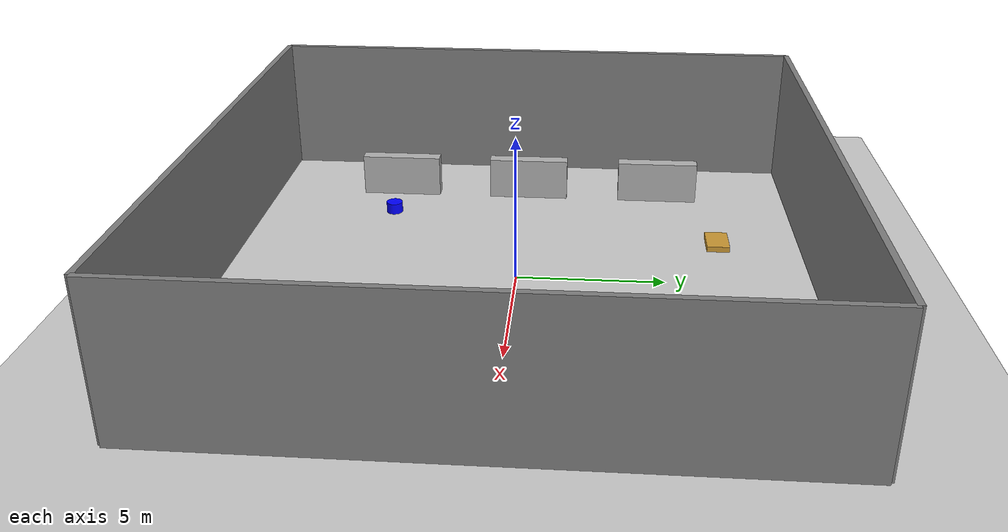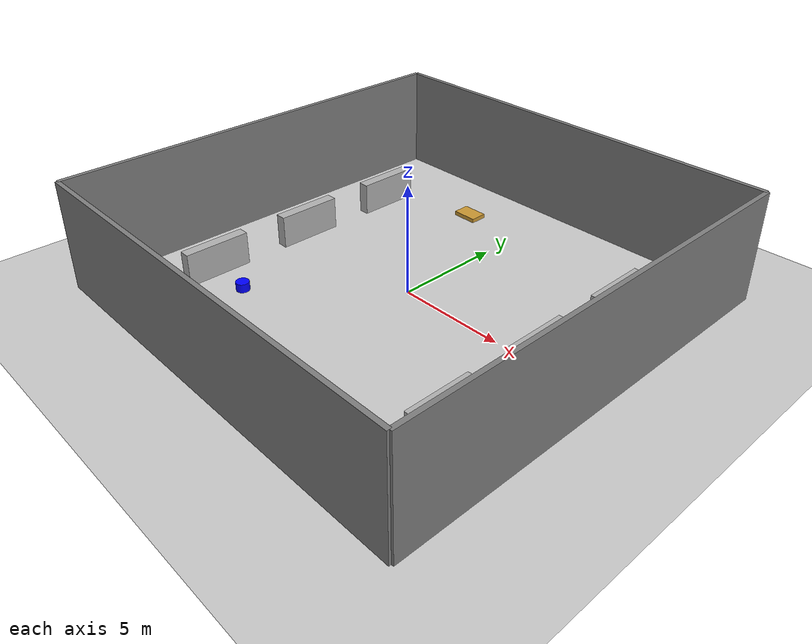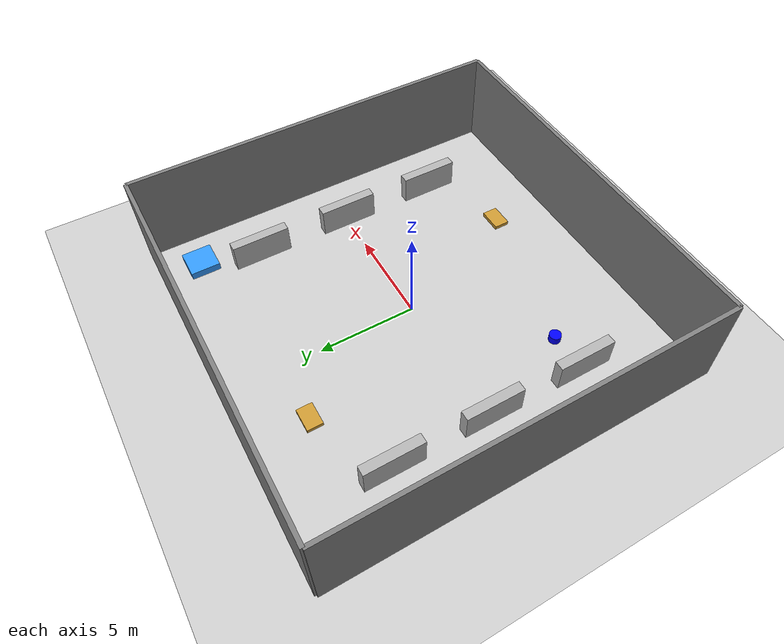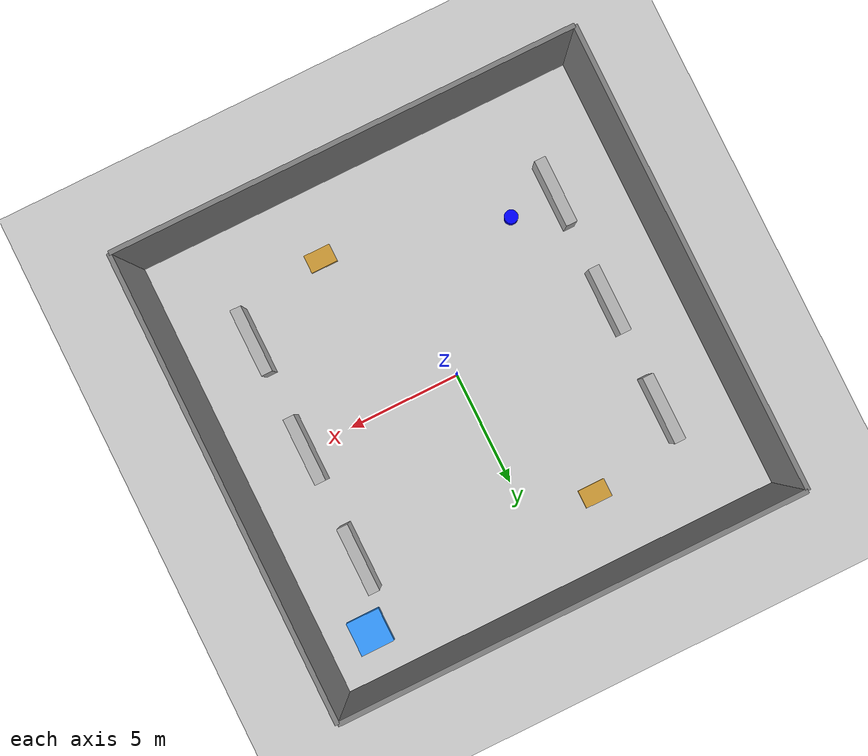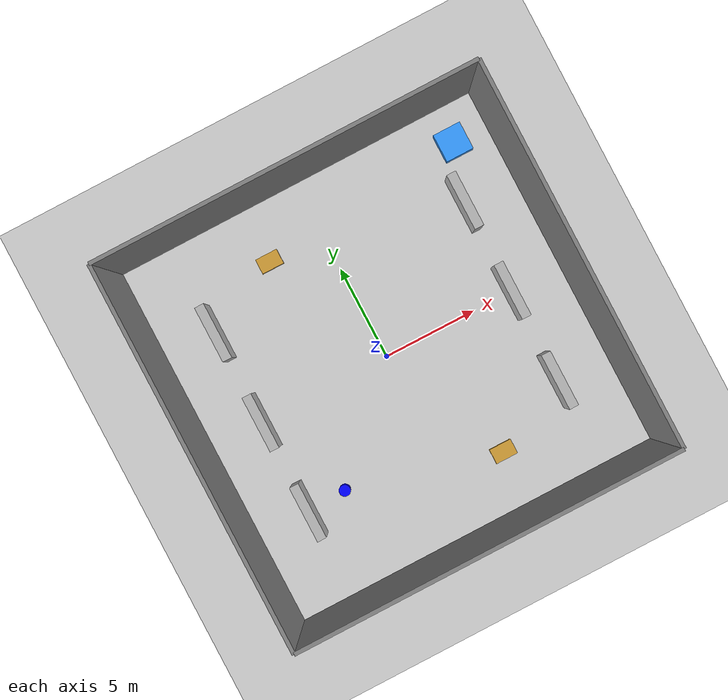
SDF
<?xml version="1.0" ?>
<sdf version="1.7">
  <world name="warehouse">
    <!-- Include default environment elements -->
    <include>
      <uri>model://ground_plane</uri>
    </include>
    <include>
      <uri>model://sun</uri>
    </include>

    <!-- Warehouse walls -->
    <model name="north_wall">
      <pose>0 10 2.5 0 0 0</pose>
      <link name="link">
        <collision name="collision">
          <geometry>
            <box>
              <size>20 0.2 5</size>
            </box>
          </geometry>
        </collision>
        <visual name="visual">
          <geometry>
            <box>
              <size>20 0.2 5</size>
            </box>
          </geometry>
          <material>
            <ambient>0.5 0.5 0.5 1</ambient>
            <diffuse>0.5 0.5 0.5 1</diffuse>
          </material>
        </visual>
      </link>
    </model>

    <model name="south_wall">
      <pose>0 -10 2.5 0 0 0</pose>
      <link name="link">
        <collision name="collision">
          <geometry>
            <box>
              <size>20 0.2 5</size>
            </box>
          </geometry>
        </collision>
        <visual name="visual">
          <geometry>
            <box>
              <size>20 0.2 5</size>
            </box>
          </geometry>
          <material>
            <ambient>0.5 0.5 0.5 1</ambient>
            <diffuse>0.5 0.5 0.5 1</diffuse>
          </material>
        </visual>
      </link>
    </model>

    <model name="east_wall">
      <pose>10 0 2.5 0 0 1.5707</pose>
      <link name="link">
        <collision name="collision">
          <geometry>
            <box>
              <size>20 0.2 5</size>
            </box>
          </geometry>
        </collision>
        <visual name="visual">
          <geometry>
            <box>
              <size>20 0.2 5</size>
            </box>
          </geometry>
          <material>
            <ambient>0.5 0.5 0.5 1</ambient>
            <diffuse>0.5 0.5 0.5 1</diffuse>
          </material>
        </visual>
      </link>
    </model>

    <model name="west_wall">
      <pose>-10 0 2.5 0 0 1.5707</pose>
      <link name="link">
        <collision name="collision">
          <geometry>
            <box>
              <size>20 0.2 5</size>
            </box>
          </geometry>
        </collision>
        <visual name="visual">
          <geometry>
            <box>
              <size>20 0.2 5</size>
            </box>
          </geometry>
          <material>
            <ambient>0.5 0.5 0.5 1</ambient>
            <diffuse>0.5 0.5 0.5 1</diffuse>
          </material>
        </visual>
      </link>
    </model>

    <!-- Warehouse shelves -->
    <model name="shelf_1">
      <pose>-7 5 0.5 0 0 0</pose>
      <link name="base">
        <collision name="collision">
          <geometry>
            <box>
              <size>0.5 3 2</size>
            </box>
          </geometry>
        </collision>
        <visual name="visual">
          <geometry>
            <box>
              <size>0.5 3 2</size>
            </box>
          </geometry>
          <material>
            <ambient>0.7 0.7 0.7 1</ambient>
            <diffuse>0.7 0.7 0.7 1</diffuse>
          </material>
        </visual>
      </link>
    </model>

    <model name="shelf_2">
      <pose>-7 0 0.5 0 0 0</pose>
      <link name="base">
        <collision name="collision">
          <geometry>
            <box>
              <size>0.5 3 2</size>
            </box>
          </geometry>
        </collision>
        <visual name="visual">
          <geometry>
            <box>
              <size>0.5 3 2</size>
            </box>
          </geometry>
          <material>
            <ambient>0.7 0.7 0.7 1</ambient>
            <diffuse>0.7 0.7 0.7 1</diffuse>
          </material>
        </visual>
      </link>
    </model>

    <model name="shelf_3">
      <pose>-7 -5 0.5 0 0 0</pose>
      <link name="base">
        <collision name="collision">
          <geometry>
            <box>
              <size>0.5 3 2</size>
            </box>
          </geometry>
        </collision>
        <visual name="visual">
          <geometry>
            <box>
              <size>0.5 3 2</size>
            </box>
          </geometry>
          <material>
            <ambient>0.7 0.7 0.7 1</ambient>
            <diffuse>0.7 0.7 0.7 1</diffuse>
          </material>
        </visual>
      </link>
    </model>

    <model name="shelf_4">
      <pose>7 5 0.5 0 0 0</pose>
      <link name="base">
        <collision name="collision">
          <geometry>
            <box>
              <size>0.5 3 2</size>
            </box>
          </geometry>
        </collision>
        <visual name="visual">
          <geometry>
            <box>
              <size>0.5 3 2</size>
            </box>
          </geometry>
          <material>
            <ambient>0.7 0.7 0.7 1</ambient>
            <diffuse>0.7 0.7 0.7 1</diffuse>
          </material>
        </visual>
      </link>
    </model>

    <model name="shelf_5">
      <pose>7 0 0.5 0 0 0</pose>
      <link name="base">
        <collision name="collision">
          <geometry>
            <box>
              <size>0.5 3 2</size>
            </box>
          </geometry>
        </collision>
        <visual name="visual">
          <geometry>
            <box>
              <size>0.5 3 2</size>
            </box>
          </geometry>
          <material>
            <ambient>0.7 0.7 0.7 1</ambient>
            <diffuse>0.7 0.7 0.7 1</diffuse>
          </material>
        </visual>
      </link>
    </model>

    <model name="shelf_6">
      <pose>7 -5 0.5 0 0 0</pose>
      <link name="base">
        <collision name="collision">
          <geometry>
            <box>
              <size>0.5 3 2</size>
            </box>
          </geometry>
        </collision>
        <visual name="visual">
          <geometry>
            <box>
              <size>0.5 3 2</size>
            </box>
          </geometry>
          <material>
            <ambient>0.7 0.7 0.7 1</ambient>
            <diffuse>0.7 0.7 0.7 1</diffuse>
          </material>
        </visual>
      </link>
    </model>

    <!-- Pallets and obstacles -->
    <model name="pallet_1">
      <pose>-3 7 0.1 0 0 0</pose>
      <link name="base">
        <collision name="collision">
          <geometry>
            <box>
              <size>1.2 0.8 0.2</size>
            </box>
          </geometry>
        </collision>
        <visual name="visual">
          <geometry>
            <box>
              <size>1.2 0.8 0.2</size>
            </box>
          </geometry>
          <material>
            <ambient>0.8 0.6 0.2 1</ambient>
            <diffuse>0.8 0.6 0.2 1</diffuse>
          </material>
        </visual>
      </link>
    </model>

    <model name="pallet_2">
      <pose>3 -7 0.1 0 0 0</pose>
      <link name="base">
        <collision name="collision">
          <geometry>
            <box>
              <size>1.2 0.8 0.2</size>
            </box>
          </geometry>
        </collision>
        <visual name="visual">
          <geometry>
            <box>
              <size>1.2 0.8 0.2</size>
            </box>
          </geometry>
          <material>
            <ambient>0.8 0.6 0.2 1</ambient>
            <diffuse>0.8 0.6 0.2 1</diffuse>
          </material>
        </visual>
      </link>
    </model>

    <!-- Charging station -->
    <model name="charging_station">
      <pose>8 8 0.2 0 0 0</pose>
      <link name="base">
        <collision name="collision">
          <geometry>
            <box>
              <size>1.5 1.5 0.4</size>
            </box>
          </geometry>
        </collision>
        <visual name="visual">
          <geometry>
            <box>
              <size>1.5 1.5 0.4</size>
            </box>
          </geometry>
          <material>
            <ambient>0.2 0.6 1 1</ambient>
            <diffuse>0.2 0.6 1 1</diffuse>
          </material>
        </visual>
      </link>
    </model>

    <!-- Moving obstacle (simulated robot) -->
    <model name="moving_robot">
      <pose>-5 -5 0.2 0 0 0</pose>
      <link name="base_link">
        <collision name="collision">
          <geometry>
            <cylinder>
              <radius>0.3</radius>
              <length>0.4</length>
            </cylinder>
          </geometry>
        </collision>
        <visual name="visual">
          <geometry>
            <cylinder>
              <radius>0.3</radius>
              <length>0.4</length>
            </cylinder>
          </geometry>
          <material>
            <ambient>0 0 1 1</ambient>
            <diffuse>0 0 1 1</diffuse>
          </material>
        </visual>
        <inertial>
          <mass>5.0</mass>
          <inertia>
            <ixx>0.1</ixx>
            <ixy>0</ixy>
            <ixz>0</ixz>
            <iyy>0.1</iyy>
            <iyz>0</iyz>
            <izz>0.1</izz>
          </inertia>
        </inertial>
      </link>
    </model>

    <!-- Lighting -->
    <light name="warehouse_light_1" type="point">
      <pose>-5 5 5 0 0 0</pose>
      <diffuse>1 1 1 1</diffuse>
      <specular>0.5 0.5 0.5 1</specular>
      <attenuation>
        <range>20</range>
        <constant>0.5</constant>
        <linear>0.1</linear>
        <quadratic>0.01</quadratic>
      </attenuation>
    </light>

    <light name="warehouse_light_2" type="point">
      <pose>5 5 5 0 0 0</pose>
      <diffuse>1 1 1 1</diffuse>
      <specular>0.5 0.5 0.5 1</specular>
      <attenuation>
        <range>20</range>
        <constant>0.5</constant>
        <linear>0.1</linear>
        <quadratic>0.01</quadratic>
      </attenuation>
    </light>

    <light name="warehouse_light_3" type="point">
      <pose>-5 -5 5 0 0 0</pose>
      <diffuse>1 1 1 1</diffuse>
      <specular>0.5 0.5 0.5 1</specular>
      <attenuation>
        <range>20</range>
        <constant>0.5</constant>
        <linear>0.1</linear>
        <quadratic>0.01</quadratic>
      </attenuation>
    </light>

    <light name="warehouse_light_4" type="point">
      <pose>5 -5 5 0 0 0</pose>
      <diffuse>1 1 1 1</diffuse>
      <specular>0.5 0.5 0.5 1</specular>
      <attenuation>
        <range>20</range>
        <constant>0.5</constant>
        <linear>0.1</linear>
        <quadratic>0.01</quadratic>
      </attenuation>
    </light>

    <!-- Physics configuration -->
    <physics type="ode">
      <max_step_size>0.001</max_step_size>
      <real_time_factor>1.0</real_time_factor>
      <real_time_update_rate>1000</real_time_update_rate>
      <gravity>0 0 -9.8</gravity>
    </physics>
  </world>
</sdf>
